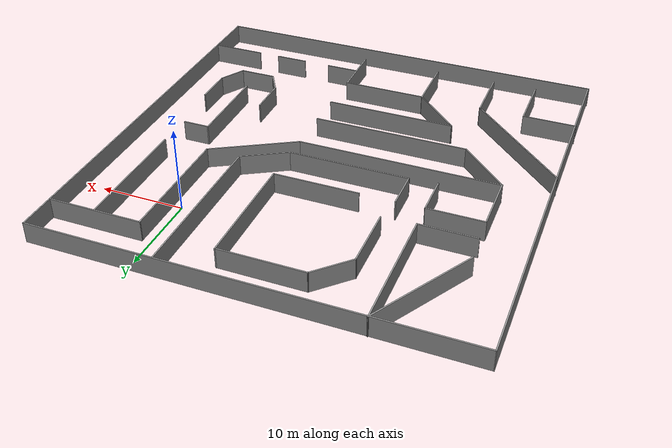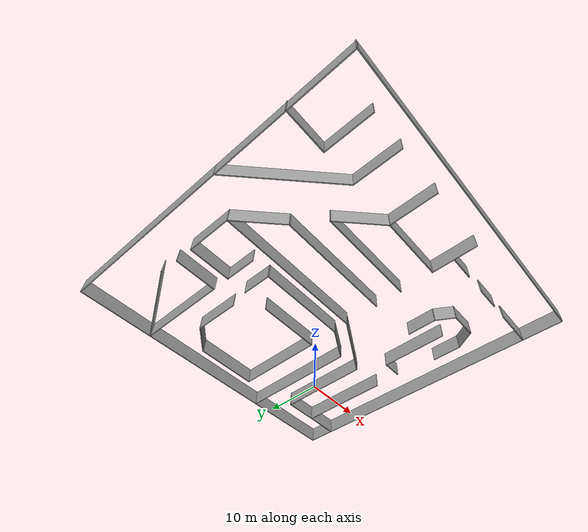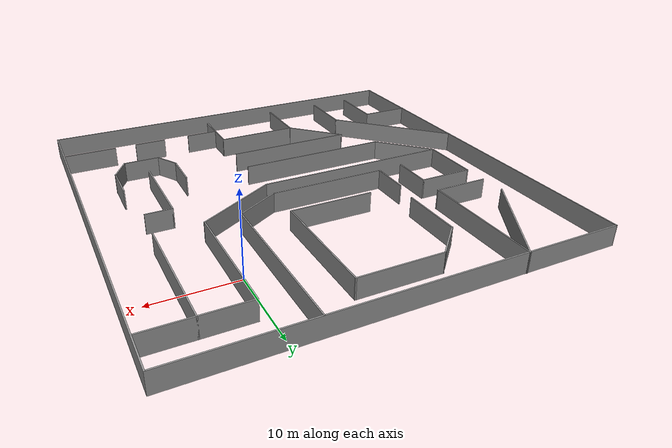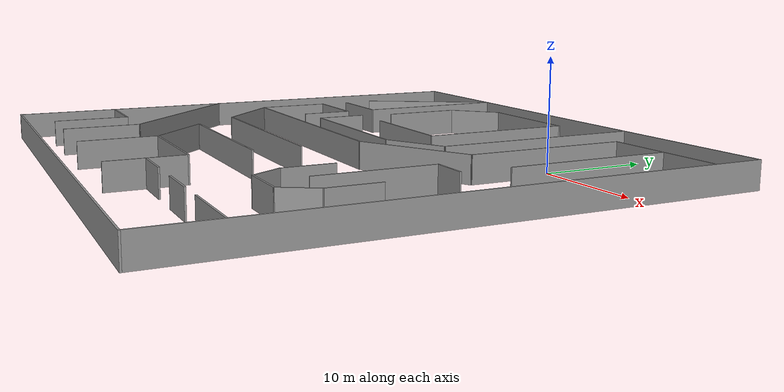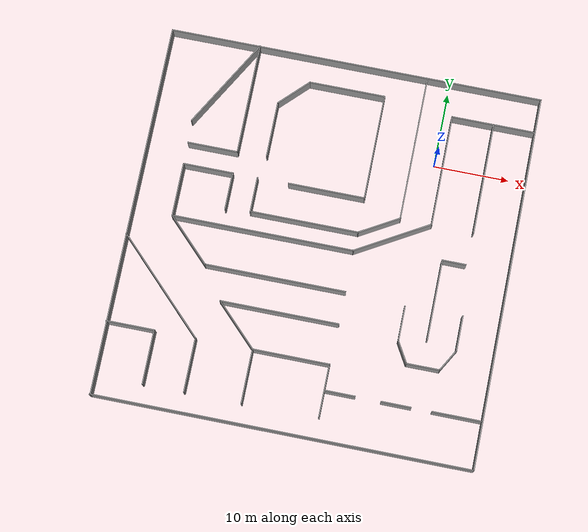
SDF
<?xml version='1.0'?>
<sdf version='1.6'>
  <model name='house_3'>
    <pose frame=''>-12.8065 -13.7879 0 0 -0 0</pose>
    <link name='Wall_0'>
      <collision name='Wall_0_Collision'>
        <geometry>
          <box>
            <size>50 0.15 2.5</size>
          </box>
        </geometry>
        <pose frame=''>0 0 1.25 0 -0 0</pose>
      </collision>
      <visual name='Wall_0_Visual'>
        <pose frame=''>0 0 1.25 0 -0 0</pose>
        <geometry>
          <box>
            <size>50 0.15 2.5</size>
          </box>
        </geometry>
        <material>
          <script>
            <uri>file://media/materials/scripts/gazebo.material</uri>
            <name>Gazebo/Grey</name>
          </script>
          <ambient>1 1 1 1</ambient>
        </material>
        <meta>
          <layer>0</layer>
        </meta>
      </visual>
      <pose frame=''>0.082539 24.8829 0 0 -0 0</pose>
    </link>
    <link name='Wall_10'>
      <collision name='Wall_10_Collision'>
        <geometry>
          <box>
            <size>15 0.15 2.5</size>
          </box>
        </geometry>
        <pose frame=''>0 0 1.25 0 -0 0</pose>
      </collision>
      <visual name='Wall_10_Visual'>
        <pose frame=''>0 0 1.25 0 -0 0</pose>
        <geometry>
          <box>
            <size>15 0.15 2.5</size>
          </box>
        </geometry>
        <material>
          <script>
            <uri>file://media/materials/scripts/gazebo.material</uri>
            <name>Gazebo/Grey</name>
          </script>
          <ambient>1 1 1 1</ambient>
        </material>
        <meta>
          <layer>0</layer>
        </meta>
      </visual>
      <pose frame=''>13.9015 12.9025 0 0 -0 -1.5708</pose>
    </link>
    <link name='Wall_12'>
      <collision name='Wall_12_Collision'>
        <geometry>
          <box>
            <size>15 0.15 2.5</size>
          </box>
        </geometry>
        <pose frame=''>0 0 1.25 0 -0 0</pose>
      </collision>
      <visual name='Wall_12_Visual'>
        <pose frame=''>0 0 1.25 0 -0 0</pose>
        <geometry>
          <box>
            <size>15 0.15 2.5</size>
          </box>
        </geometry>
        <material>
          <script>
            <uri>file://media/materials/scripts/gazebo.material</uri>
            <name>Gazebo/Grey</name>
          </script>
          <ambient>1 1 1 1</ambient>
        </material>
        <meta>
          <layer>0</layer>
        </meta>
      </visual>
      <pose frame=''>19.4669 12.9025 0 0 -0 -1.5708</pose>
    </link>
    <link name='Wall_14'>
      <collision name='Wall_14_Collision'>
        <geometry>
          <box>
            <size>11 0.15 2.5</size>
          </box>
        </geometry>
        <pose frame=''>0 0 1.25 0 -0 0</pose>
      </collision>
      <visual name='Wall_14_Visual'>
        <pose frame=''>0 0 1.25 0 -0 0</pose>
        <geometry>
          <box>
            <size>11 0.15 2.5</size>
          </box>
        </geometry>
        <material>
          <script>
            <uri>file://media/materials/scripts/gazebo.material</uri>
            <name>Gazebo/Grey</name>
          </script>
          <ambient>1 1 1 1</ambient>
        </material>
        <meta>
          <layer>0</layer>
        </meta>
      </visual>
      <pose frame=''>9.2033 2.76496 0 0 -0 -2.61799</pose>
    </link>
    <link name='Wall_15'>
      <collision name='Wall_15_Collision'>
        <geometry>
          <box>
            <size>24.25 0.15 2.5</size>
          </box>
        </geometry>
        <pose frame=''>0 0 1.25 0 -0 0</pose>
      </collision>
      <visual name='Wall_15_Visual'>
        <pose frame=''>0 0 1.25 0 -0 0</pose>
        <geometry>
          <box>
            <size>24.25 0.15 2.5</size>
          </box>
        </geometry>
        <material>
          <script>
            <uri>file://media/materials/scripts/gazebo.material</uri>
            <name>Gazebo/Grey</name>
          </script>
          <ambient>1 1 1 1</ambient>
        </material>
        <meta>
          <layer>0</layer>
        </meta>
      </visual>
      <pose frame=''>-7.54488 0.052464 0 0 -0 3.14159</pose>
    </link>
    <link name='Wall_16'>
      <collision name='Wall_16_Collision'>
        <geometry>
          <box>
            <size>7.25 0.15 2.5</size>
          </box>
        </geometry>
        <pose frame=''>0 0 1.25 0 -0 0</pose>
      </collision>
      <visual name='Wall_16_Visual'>
        <pose frame=''>0 0 1.25 0 -0 0</pose>
        <geometry>
          <box>
            <size>7.25 0.15 2.5</size>
          </box>
        </geometry>
        <material>
          <script>
            <uri>file://media/materials/scripts/gazebo.material</uri>
            <name>Gazebo/Grey</name>
          </script>
          <ambient>1 1 1 1</ambient>
        </material>
        <meta>
          <layer>0</layer>
        </meta>
      </visual>
      <pose frame=''>-19.5949 3.60246 0 0 -0 1.5708</pose>
    </link>
    <link name='Wall_17'>
      <collision name='Wall_17_Collision'>
        <geometry>
          <box>
            <size>6.75 0.15 2.5</size>
          </box>
        </geometry>
        <pose frame=''>0 0 1.25 0 -0 0</pose>
      </collision>
      <visual name='Wall_17_Visual'>
        <pose frame=''>0 0 1.25 0 -0 0</pose>
        <geometry>
          <box>
            <size>6.75 0.15 2.5</size>
          </box>
        </geometry>
        <material>
          <script>
            <uri>file://media/materials/scripts/gazebo.material</uri>
            <name>Gazebo/Grey</name>
          </script>
          <ambient>1 1 1 1</ambient>
        </material>
        <meta>
          <layer>0</layer>
        </meta>
      </visual>
      <pose frame=''>-16.2949 7.15246 0 0 -0 0</pose>
    </link>
    <link name='Wall_18'>
      <collision name='Wall_18_Collision'>
        <geometry>
          <box>
            <size>5 0.15 2.5</size>
          </box>
        </geometry>
        <pose frame=''>0 0 1.25 0 -0 0</pose>
      </collision>
      <visual name='Wall_18_Visual'>
        <pose frame=''>0 0 1.25 0 -0 0</pose>
        <geometry>
          <box>
            <size>5 0.15 2.5</size>
          </box>
        </geometry>
        <material>
          <script>
            <uri>file://media/materials/scripts/gazebo.material</uri>
            <name>Gazebo/Grey</name>
          </script>
          <ambient>1 1 1 1</ambient>
        </material>
        <meta>
          <layer>0</layer>
        </meta>
      </visual>
      <pose frame=''>-12.9949 4.72746 0 0 -0 -1.5708</pose>
    </link>
    <link name='Wall_20'>
      <collision name='Wall_20_Collision'>
        <geometry>
          <box>
            <size>15 0.15 2.5</size>
          </box>
        </geometry>
        <pose frame=''>0 0 1.25 0 -0 0</pose>
      </collision>
      <visual name='Wall_20_Visual'>
        <pose frame=''>0 0 1.25 0 -0 0</pose>
        <geometry>
          <box>
            <size>15 0.15 2.5</size>
          </box>
        </geometry>
        <material>
          <script>
            <uri>file://media/materials/scripts/gazebo.material</uri>
            <name>Gazebo/Grey</name>
          </script>
          <ambient>1 1 1 1</ambient>
        </material>
        <meta>
          <layer>0</layer>
        </meta>
      </visual>
      <pose frame=''>-12.9922 17.5147 0 0 -0 -1.5708</pose>
    </link>
    <link name='Wall_21'>
      <collision name='Wall_21_Collision'>
        <geometry>
          <box>
            <size>6.75 0.15 2.5</size>
          </box>
        </geometry>
        <pose frame=''>0 0 1.25 0 -0 0</pose>
      </collision>
      <visual name='Wall_21_Visual'>
        <pose frame=''>0 0 1.25 0 -0 0</pose>
        <geometry>
          <box>
            <size>6.75 0.15 2.5</size>
          </box>
        </geometry>
        <material>
          <script>
            <uri>file://media/materials/scripts/gazebo.material</uri>
            <name>Gazebo/Grey</name>
          </script>
          <ambient>1 1 1 1</ambient>
        </material>
        <meta>
          <layer>0</layer>
        </meta>
      </visual>
      <pose frame=''>-16.2922 10.0897 0 0 -0 3.14159</pose>
    </link>
    <link name='Wall_23'>
      <collision name='Wall_23_Collision'>
        <geometry>
          <box>
            <size>13.75 0.15 2.5</size>
          </box>
        </geometry>
        <pose frame=''>0 0 1.25 0 -0 0</pose>
      </collision>
      <visual name='Wall_23_Visual'>
        <pose frame=''>0 0 1.25 0 -0 0</pose>
        <geometry>
          <box>
            <size>13.75 0.15 2.5</size>
          </box>
        </geometry>
        <material>
          <script>
            <uri>file://media/materials/scripts/gazebo.material</uri>
            <name>Gazebo/Grey</name>
          </script>
          <ambient>1 1 1 1</ambient>
        </material>
        <meta>
          <layer>0</layer>
        </meta>
      </visual>
      <pose frame=''>-16.3922 19.0507 0 0 -0 -2.0944</pose>
    </link>
    <link name='Wall_26'>
      <collision name='Wall_26_Collision'>
        <geometry>
          <box>
            <size>19.5 0.15 2.5</size>
          </box>
        </geometry>
        <pose frame=''>0 0 1.25 0 -0 0</pose>
      </collision>
      <visual name='Wall_26_Visual'>
        <pose frame=''>0 0 1.25 0 -0 0</pose>
        <geometry>
          <box>
            <size>19.5 0.15 2.5</size>
          </box>
        </geometry>
        <material>
          <script>
            <uri>file://media/materials/scripts/gazebo.material</uri>
            <name>Gazebo/Grey</name>
          </script>
          <ambient>1 1 1 1</ambient>
        </material>
        <meta>
          <layer>0</layer>
        </meta>
      </visual>
      <pose frame=''>9.7287 15.1594 0 0 -0 -1.5708</pose>
    </link>
    <link name='Wall_27'>
      <collision name='Wall_27_Collision'>
        <geometry>
          <box>
            <size>6 0.15 2.5</size>
          </box>
        </geometry>
        <pose frame=''>0 0 1.25 0 -0 0</pose>
      </collision>
      <visual name='Wall_27_Visual'>
        <pose frame=''>0 0 1.25 0 -0 0</pose>
        <geometry>
          <box>
            <size>6 0.15 2.5</size>
          </box>
        </geometry>
        <material>
          <script>
            <uri>file://media/materials/scripts/gazebo.material</uri>
            <name>Gazebo/Grey</name>
          </script>
          <ambient>1 1 1 1</ambient>
        </material>
        <meta>
          <layer>0</layer>
        </meta>
      </visual>
      <pose frame=''>7.19558 4.02185 0 0 -0 -2.61799</pose>
    </link>
    <link name='Wall_28'>
      <collision name='Wall_28_Collision'>
        <geometry>
          <box>
            <size>14.5 0.15 2.5</size>
          </box>
        </geometry>
        <pose frame=''>0 0 1.25 0 -0 0</pose>
      </collision>
      <visual name='Wall_28_Visual'>
        <pose frame=''>0 0 1.25 0 -0 0</pose>
        <geometry>
          <box>
            <size>14.5 0.15 2.5</size>
          </box>
        </geometry>
        <material>
          <script>
            <uri>file://media/materials/scripts/gazebo.material</uri>
            <name>Gazebo/Grey</name>
          </script>
          <ambient>1 1 1 1</ambient>
        </material>
        <meta>
          <layer>0</layer>
        </meta>
      </visual>
      <pose frame=''>-2.51255 2.55935 0 0 -0 3.14159</pose>
    </link>
    <link name='Wall_29'>
      <collision name='Wall_29_Collision'>
        <geometry>
          <box>
            <size>4.75 0.15 2.5</size>
          </box>
        </geometry>
        <pose frame=''>0 0 1.25 0 -0 0</pose>
      </collision>
      <visual name='Wall_29_Visual'>
        <pose frame=''>0 0 1.25 0 -0 0</pose>
        <geometry>
          <box>
            <size>4.75 0.15 2.5</size>
          </box>
        </geometry>
        <material>
          <script>
            <uri>file://media/materials/scripts/gazebo.material</uri>
            <name>Gazebo/Grey</name>
          </script>
          <ambient>1 1 1 1</ambient>
        </material>
        <meta>
          <layer>0</layer>
        </meta>
      </visual>
      <pose frame=''>-9.68755 4.85935 0 0 -0 1.5708</pose>
    </link>
    <link name='Wall_3'>
      <collision name='Wall_3_Collision'>
        <geometry>
          <box>
            <size>50 0.15 2.5</size>
          </box>
        </geometry>
        <pose frame=''>0 0 1.25 0 -0 0</pose>
      </collision>
      <visual name='Wall_3_Visual'>
        <pose frame=''>0 0 1.25 0 -0 0</pose>
        <geometry>
          <box>
            <size>50 0.15 2.5</size>
          </box>
        </geometry>
        <material>
          <script>
            <uri>file://media/materials/scripts/gazebo.material</uri>
            <name>Gazebo/Grey</name>
          </script>
          <ambient>1 1 1 1</ambient>
        </material>
        <meta>
          <layer>0</layer>
        </meta>
      </visual>
      <pose frame=''>25.0075 -0.042105 0 0 -0 -1.5708</pose>
    </link>
    <link name='Wall_32'>
      <collision name='Wall_32_Collision'>
        <geometry>
          <box>
            <size>16.75 0.15 2.5</size>
          </box>
        </geometry>
        <pose frame=''>0 0 1.25 0 -0 0</pose>
      </collision>
      <visual name='Wall_32_Visual'>
        <pose frame=''>0 0 1.25 0 -0 0</pose>
        <geometry>
          <box>
            <size>16.75 0.15 2.5</size>
          </box>
        </geometry>
        <material>
          <script>
            <uri>file://media/materials/scripts/gazebo.material</uri>
            <name>Gazebo/Grey</name>
          </script>
          <ambient>1 1 1 1</ambient>
        </material>
        <meta>
          <layer>0</layer>
        </meta>
      </visual>
      <pose frame=''>-19.0933 -9.36439 0 0 -0 -0.785398</pose>
    </link>
    <link name='Wall_33'>
      <collision name='Wall_33_Collision'>
        <geometry>
          <box>
            <size>7.25 0.15 2.5</size>
          </box>
        </geometry>
        <pose frame=''>0 0 1.25 0 -0 0</pose>
      </collision>
      <visual name='Wall_33_Visual'>
        <pose frame=''>0 0 1.25 0 -0 0</pose>
        <geometry>
          <box>
            <size>7.25 0.15 2.5</size>
          </box>
        </geometry>
        <material>
          <script>
            <uri>file://media/materials/scripts/gazebo.material</uri>
            <name>Gazebo/Grey</name>
          </script>
          <ambient>1 1 1 1</ambient>
        </material>
        <meta>
          <layer>0</layer>
        </meta>
      </visual>
      <pose frame=''>-13.2244 -18.7834 0 0 -0 -1.5708</pose>
    </link>
    <link name='Wall_35'>
      <collision name='Wall_35_Collision'>
        <geometry>
          <box>
            <size>8 0.15 2.5</size>
          </box>
        </geometry>
        <pose frame=''>0 0 1.25 0 -0 0</pose>
      </collision>
      <visual name='Wall_35_Visual'>
        <pose frame=''>0 0 1.25 0 -0 0</pose>
        <geometry>
          <box>
            <size>8 0.15 2.5</size>
          </box>
        </geometry>
        <material>
          <script>
            <uri>file://media/materials/scripts/gazebo.material</uri>
            <name>Gazebo/Grey</name>
          </script>
          <ambient>1 1 1 1</ambient>
        </material>
        <meta>
          <layer>0</layer>
        </meta>
      </visual>
      <pose frame=''>-16.8195 -2.72293 0 0 -0 -0.785398</pose>
    </link>
    <link name='Wall_36'>
      <collision name='Wall_36_Collision'>
        <geometry>
          <box>
            <size>18.75 0.15 2.5</size>
          </box>
        </geometry>
        <pose frame=''>0 0 1.25 0 -0 0</pose>
      </collision>
      <visual name='Wall_36_Visual'>
        <pose frame=''>0 0 1.25 0 -0 0</pose>
        <geometry>
          <box>
            <size>18.75 0.15 2.5</size>
          </box>
        </geometry>
        <material>
          <script>
            <uri>file://media/materials/scripts/gazebo.material</uri>
            <name>Gazebo/Grey</name>
          </script>
          <ambient>1 1 1 1</ambient>
        </material>
        <meta>
          <layer>0</layer>
        </meta>
      </visual>
      <pose frame=''>-4.7441 -5.49833 0 0 -0 0</pose>
    </link>
    <link name='Wall_38'>
      <collision name='Wall_38_Collision'>
        <geometry>
          <box>
            <size>15.75 0.15 2.5</size>
          </box>
        </geometry>
        <pose frame=''>0 0 1.25 0 -0 0</pose>
      </collision>
      <visual name='Wall_38_Visual'>
        <pose frame=''>0 0 1.25 0 -0 0</pose>
        <geometry>
          <box>
            <size>15.75 0.15 2.5</size>
          </box>
        </geometry>
        <material>
          <script>
            <uri>file://media/materials/scripts/gazebo.material</uri>
            <name>Gazebo/Grey</name>
          </script>
          <ambient>1 1 1 1</ambient>
        </material>
        <meta>
          <layer>0</layer>
        </meta>
      </visual>
      <pose frame=''>-3.28574 -9.83847 0 0 -0 3.14159</pose>
    </link>
    <link name='Wall_39'>
      <collision name='Wall_39_Collision'>
        <geometry>
          <box>
            <size>7.75 0.15 2.5</size>
          </box>
        </geometry>
        <pose frame=''>0 0 1.25 0 -0 0</pose>
      </collision>
      <visual name='Wall_39_Visual'>
        <pose frame=''>0 0 1.25 0 -0 0</pose>
        <geometry>
          <box>
            <size>7.75 0.15 2.5</size>
          </box>
        </geometry>
        <material>
          <script>
            <uri>file://media/materials/scripts/gazebo.material</uri>
            <name>Gazebo/Grey</name>
          </script>
          <ambient>1 1 1 1</ambient>
        </material>
        <meta>
          <layer>0</layer>
        </meta>
      </visual>
      <pose frame=''>-8.3986 -12.5253 0 0 -0 -0.785339</pose>
    </link>
    <link name='Wall_4'>
      <collision name='Wall_4_Collision'>
        <geometry>
          <box>
            <size>50.16 0.15 2.5</size>
          </box>
        </geometry>
        <pose frame=''>0 0 1.25 0 -0 0</pose>
      </collision>
      <visual name='Wall_4_Visual'>
        <pose frame=''>0 0 1.25 0 -0 0</pose>
        <geometry>
          <box>
            <size>50.16 0.15 2.5</size>
          </box>
        </geometry>
        <material>
          <script>
            <uri>file://media/materials/scripts/gazebo.material</uri>
            <name>Gazebo/Grey</name>
          </script>
          <ambient>1 1 1 1</ambient>
        </material>
        <meta>
          <layer>0</layer>
        </meta>
      </visual>
      <pose frame=''>0.002539 -24.9671 0 0 -0 3.14159</pose>
    </link>
    <link name='Wall_40'>
      <collision name='Wall_40_Collision'>
        <geometry>
          <box>
            <size>10.25 0.15 2.5</size>
          </box>
        </geometry>
        <pose frame=''>0 0 1.25 0 -0 0</pose>
      </collision>
      <visual name='Wall_40_Visual'>
        <pose frame=''>0 0 1.25 0 -0 0</pose>
        <geometry>
          <box>
            <size>10.25 0.15 2.5</size>
          </box>
        </geometry>
        <material>
          <script>
            <uri>file://media/materials/scripts/gazebo.material</uri>
            <name>Gazebo/Grey</name>
          </script>
          <ambient>1 1 1 1</ambient>
        </material>
        <meta>
          <layer>0</layer>
        </meta>
      </visual>
      <pose frame=''>-0.661594 -15.2123 0 0 -0 -3.7e-05</pose>
    </link>
    <link name='Wall_41'>
      <collision name='Wall_41_Collision'>
        <geometry>
          <box>
            <size>7 0.15 2.5</size>
          </box>
        </geometry>
        <pose frame=''>0 0 1.25 0 -0 0</pose>
      </collision>
      <visual name='Wall_41_Visual'>
        <pose frame=''>0 0 1.25 0 -0 0</pose>
        <geometry>
          <box>
            <size>7 0.15 2.5</size>
          </box>
        </geometry>
        <material>
          <script>
            <uri>file://media/materials/scripts/gazebo.material</uri>
            <name>Gazebo/Grey</name>
          </script>
          <ambient>1 1 1 1</ambient>
        </material>
        <meta>
          <layer>0</layer>
        </meta>
      </visual>
      <pose frame=''>4.38827 -18.6375 0 0 -0 -1.5708</pose>
    </link>
    <link name='Wall_45'>
      <collision name='Wall_45_Collision'>
        <geometry>
          <box>
            <size>4.75 0.15 2.5</size>
          </box>
        </geometry>
        <pose frame=''>0 0 1.25 0 -0 0</pose>
      </collision>
      <visual name='Wall_45_Visual'>
        <pose frame=''>0 0 1.25 0 -0 0</pose>
        <geometry>
          <box>
            <size>4.75 0.15 2.5</size>
          </box>
        </geometry>
        <material>
          <script>
            <uri>file://media/materials/scripts/gazebo.material</uri>
            <name>Gazebo/Grey</name>
          </script>
          <ambient>1 1 1 1</ambient>
        </material>
        <meta>
          <layer>0</layer>
        </meta>
      </visual>
      <pose frame=''>20.0784 -7.97043 0 0 -0 -1.5708</pose>
    </link>
    <link name='Wall_46'>
      <collision name='Wall_46_Collision'>
        <geometry>
          <box>
            <size>3.5 0.15 2.5</size>
          </box>
        </geometry>
        <pose frame=''>0 0 1.25 0 -0 0</pose>
      </collision>
      <visual name='Wall_46_Visual'>
        <pose frame=''>0 0 1.25 0 -0 0</pose>
        <geometry>
          <box>
            <size>3.5 0.15 2.5</size>
          </box>
        </geometry>
        <material>
          <script>
            <uri>file://media/materials/scripts/gazebo.material</uri>
            <name>Gazebo/Grey</name>
          </script>
          <ambient>1 1 1 1</ambient>
        </material>
        <meta>
          <layer>0</layer>
        </meta>
      </visual>
      <pose frame=''>19.2409 -11.721 0 0 -0 -2.0944</pose>
    </link>
    <link name='Wall_47'>
      <collision name='Wall_47_Collision'>
        <geometry>
          <box>
            <size>4.5 0.15 2.5</size>
          </box>
        </geometry>
        <pose frame=''>0 0 1.25 0 -0 0</pose>
      </collision>
      <visual name='Wall_47_Visual'>
        <pose frame=''>0 0 1.25 0 -0 0</pose>
        <geometry>
          <box>
            <size>4.5 0.15 2.5</size>
          </box>
        </geometry>
        <material>
          <script>
            <uri>file://media/materials/scripts/gazebo.material</uri>
            <name>Gazebo/Grey</name>
          </script>
          <ambient>1 1 1 1</ambient>
        </material>
        <meta>
          <layer>0</layer>
        </meta>
      </visual>
      <pose frame=''>16.2284 -13.1716 0 0 -0 3.14159</pose>
    </link>
    <link name='Wall_48'>
      <collision name='Wall_48_Collision'>
        <geometry>
          <box>
            <size>3.25 0.15 2.5</size>
          </box>
        </geometry>
        <pose frame=''>0 0 1.25 0 -0 0</pose>
      </collision>
      <visual name='Wall_48_Visual'>
        <pose frame=''>0 0 1.25 0 -0 0</pose>
        <geometry>
          <box>
            <size>3.25 0.15 2.5</size>
          </box>
        </geometry>
        <material>
          <script>
            <uri>file://media/materials/scripts/gazebo.material</uri>
            <name>Gazebo/Grey</name>
          </script>
          <ambient>1 1 1 1</ambient>
        </material>
        <meta>
          <layer>0</layer>
        </meta>
      </visual>
      <pose frame=''>13.2784 -11.8293 0 0 -0 2.0944</pose>
    </link>
    <link name='Wall_49'>
      <collision name='Wall_49_Collision'>
        <geometry>
          <box>
            <size>4.75 0.15 2.5</size>
          </box>
        </geometry>
        <pose frame=''>0 0 1.25 0 -0 0</pose>
      </collision>
      <visual name='Wall_49_Visual'>
        <pose frame=''>0 0 1.25 0 -0 0</pose>
        <geometry>
          <box>
            <size>4.75 0.15 2.5</size>
          </box>
        </geometry>
        <material>
          <script>
            <uri>file://media/materials/scripts/gazebo.material</uri>
            <name>Gazebo/Grey</name>
          </script>
          <ambient>1 1 1 1</ambient>
        </material>
        <meta>
          <layer>0</layer>
        </meta>
      </visual>
      <pose frame=''>12.5034 -8.18694 0 0 -0 1.5708</pose>
    </link>
    <link name='Wall_52'>
      <collision name='Wall_52_Collision'>
        <geometry>
          <box>
            <size>10.25 0.15 2.5</size>
          </box>
        </geometry>
        <pose frame=''>0 0 1.25 0 -0 0</pose>
      </collision>
      <visual name='Wall_52_Visual'>
        <pose frame=''>0 0 1.25 0 -0 0</pose>
        <geometry>
          <box>
            <size>10.25 0.15 2.5</size>
          </box>
        </geometry>
        <material>
          <script>
            <uri>file://media/materials/scripts/gazebo.material</uri>
            <name>Gazebo/Grey</name>
          </script>
          <ambient>1 1 1 1</ambient>
        </material>
        <meta>
          <layer>0</layer>
        </meta>
      </visual>
      <pose frame=''>-0.439669 7.22302 0 0 -0 0</pose>
    </link>
    <link name='Wall_53'>
      <collision name='Wall_53_Collision'>
        <geometry>
          <box>
            <size>14.25 0.15 2.5</size>
          </box>
        </geometry>
        <pose frame=''>0 0 1.25 0 -0 0</pose>
      </collision>
      <visual name='Wall_53_Visual'>
        <pose frame=''>0 0 1.25 0 -0 0</pose>
        <geometry>
          <box>
            <size>14.25 0.15 2.5</size>
          </box>
        </geometry>
        <material>
          <script>
            <uri>file://media/materials/scripts/gazebo.material</uri>
            <name>Gazebo/Grey</name>
          </script>
          <ambient>1 1 1 1</ambient>
        </material>
        <meta>
          <layer>0</layer>
        </meta>
      </visual>
      <pose frame=''>4.61033 14.273 0 0 -0 1.5708</pose>
    </link>
    <link name='Wall_54'>
      <collision name='Wall_54_Collision'>
        <geometry>
          <box>
            <size>10.25 0.15 2.5</size>
          </box>
        </geometry>
        <pose frame=''>0 0 1.25 0 -0 0</pose>
      </collision>
      <visual name='Wall_54_Visual'>
        <pose frame=''>0 0 1.25 0 -0 0</pose>
        <geometry>
          <box>
            <size>10.25 0.15 2.5</size>
          </box>
        </geometry>
        <material>
          <script>
            <uri>file://media/materials/scripts/gazebo.material</uri>
            <name>Gazebo/Grey</name>
          </script>
          <ambient>1 1 1 1</ambient>
        </material>
        <meta>
          <layer>0</layer>
        </meta>
      </visual>
      <pose frame=''>-0.439669 21.323 0 0 -0 3.14159</pose>
    </link>
    <link name='Wall_55'>
      <collision name='Wall_55_Collision'>
        <geometry>
          <box>
            <size>5.25 0.15 2.5</size>
          </box>
        </geometry>
        <pose frame=''>0 0 1.25 0 -0 0</pose>
      </collision>
      <visual name='Wall_55_Visual'>
        <pose frame=''>0 0 1.25 0 -0 0</pose>
        <geometry>
          <box>
            <size>5.25 0.15 2.5</size>
          </box>
        </geometry>
        <material>
          <script>
            <uri>file://media/materials/scripts/gazebo.material</uri>
            <name>Gazebo/Grey</name>
          </script>
          <ambient>1 1 1 1</ambient>
        </material>
        <meta>
          <layer>0</layer>
        </meta>
      </visual>
      <pose frame=''>-7.29279 19.5199 0 0 -0 -2.35619</pose>
    </link>
    <link name='Wall_56'>
      <collision name='Wall_56_Collision'>
        <geometry>
          <box>
            <size>7.5 0.15 2.5</size>
          </box>
        </geometry>
        <pose frame=''>0 0 1.25 0 -0 0</pose>
      </collision>
      <visual name='Wall_56_Visual'>
        <pose frame=''>0 0 1.25 0 -0 0</pose>
        <geometry>
          <box>
            <size>7.5 0.15 2.5</size>
          </box>
        </geometry>
        <material>
          <script>
            <uri>file://media/materials/scripts/gazebo.material</uri>
            <name>Gazebo/Grey</name>
          </script>
          <ambient>1 1 1 1</ambient>
        </material>
        <meta>
          <layer>0</layer>
        </meta>
      </visual>
      <pose frame=''>-9.09591 14.0418 0 0 -0 -1.5708</pose>
    </link>
    <link name='Wall_58'>
      <collision name='Wall_58_Collision'>
        <geometry>
          <box>
            <size>10.75 0.15 2.5</size>
          </box>
        </geometry>
        <pose frame=''>0 0 1.25 0 -0 0</pose>
      </collision>
      <visual name='Wall_58_Visual'>
        <pose frame=''>0 0 1.25 0 -0 0</pose>
        <geometry>
          <box>
            <size>10.75 0.15 2.5</size>
          </box>
        </geometry>
        <material>
          <script>
            <uri>file://media/materials/scripts/gazebo.material</uri>
            <name>Gazebo/Grey</name>
          </script>
          <ambient>1 1 1 1</ambient>
        </material>
        <meta>
          <layer>0</layer>
        </meta>
      </visual>
      <pose frame=''>16.1325 -4.24559 0 0 -0 1.5708</pose>
    </link>
    <link name='Wall_59'>
      <collision name='Wall_59_Collision'>
        <geometry>
          <box>
            <size>3.25 0.15 2.5</size>
          </box>
        </geometry>
        <pose frame=''>0 0 1.25 0 -0 0</pose>
      </collision>
      <visual name='Wall_59_Visual'>
        <pose frame=''>0 0 1.25 0 -0 0</pose>
        <geometry>
          <box>
            <size>3.25 0.15 2.5</size>
          </box>
        </geometry>
        <material>
          <script>
            <uri>file://media/materials/scripts/gazebo.material</uri>
            <name>Gazebo/Grey</name>
          </script>
          <ambient>1 1 1 1</ambient>
        </material>
        <meta>
          <layer>0</layer>
        </meta>
      </visual>
      <pose frame=''>17.6825 1.05441 0 0 -0 0</pose>
    </link>
    <link name='Wall_61'>
      <collision name='Wall_61_Collision'>
        <geometry>
          <box>
            <size>4 0.15 2.5</size>
          </box>
        </geometry>
        <pose frame=''>0 0 1.25 0 -0 0</pose>
      </collision>
      <visual name='Wall_61_Visual'>
        <pose frame=''>0 0 1.25 0 -0 0</pose>
        <geometry>
          <box>
            <size>4 0.15 2.5</size>
          </box>
        </geometry>
        <material>
          <script>
            <uri>file://media/materials/scripts/gazebo.material</uri>
            <name>Gazebo/Grey</name>
          </script>
          <ambient>1 1 1 1</ambient>
        </material>
        <meta>
          <layer>0</layer>
        </meta>
      </visual>
      <pose frame=''>6.44831 -18.6339 0 0 -0 0</pose>
    </link>
    <link name='Wall_63'>
      <collision name='Wall_63_Collision'>
        <geometry>
          <box>
            <size>4 0.15 2.5</size>
          </box>
        </geometry>
        <pose frame=''>0 0 1.25 0 -0 0</pose>
      </collision>
      <visual name='Wall_63_Visual'>
        <pose frame=''>0 0 1.25 0 -0 0</pose>
        <geometry>
          <box>
            <size>4 0.15 2.5</size>
          </box>
        </geometry>
        <material>
          <script>
            <uri>file://media/materials/scripts/gazebo.material</uri>
            <name>Gazebo/Grey</name>
          </script>
          <ambient>1 1 1 1</ambient>
        </material>
        <meta>
          <layer>0</layer>
        </meta>
      </visual>
      <pose frame=''>13.754 -18.6339 0 0 -0 0</pose>
    </link>
    <link name='Wall_68'>
      <collision name='Wall_68_Collision'>
        <geometry>
          <box>
            <size>6.5 0.15 2.5</size>
          </box>
        </geometry>
        <pose frame=''>0 0 1.25 0 -0 0</pose>
      </collision>
      <visual name='Wall_68_Visual'>
        <pose frame=''>0 0 1.25 0 -0 0</pose>
        <geometry>
          <box>
            <size>6.5 0.15 2.5</size>
          </box>
        </geometry>
        <material>
          <script>
            <uri>file://media/materials/scripts/gazebo.material</uri>
            <name>Gazebo/Grey</name>
          </script>
          <ambient>1 1 1 1</ambient>
        </material>
        <meta>
          <layer>0</layer>
        </meta>
      </visual>
      <pose frame=''>-21.8325 -15.2562 0 0 -0 4.3e-05</pose>
    </link>
    <link name='Wall_69'>
      <collision name='Wall_69_Collision'>
        <geometry>
          <box>
            <size>7.25 0.15 2.5</size>
          </box>
        </geometry>
        <pose frame=''>0 0 1.25 0 -0 0</pose>
      </collision>
      <visual name='Wall_69_Visual'>
        <pose frame=''>0 0 1.25 0 -0 0</pose>
        <geometry>
          <box>
            <size>7.25 0.15 2.5</size>
          </box>
        </geometry>
        <material>
          <script>
            <uri>file://media/materials/scripts/gazebo.material</uri>
            <name>Gazebo/Grey</name>
          </script>
          <ambient>1 1 1 1</ambient>
        </material>
        <meta>
          <layer>0</layer>
        </meta>
      </visual>
      <pose frame=''>-18.6575 -18.8061 0 0 -0 -1.5708</pose>
    </link>
    <link name='Wall_7'>
      <collision name='Wall_7_Collision'>
        <geometry>
          <box>
            <size>50 0.15 2.5</size>
          </box>
        </geometry>
        <pose frame=''>0 0 1.25 0 -0 0</pose>
      </collision>
      <visual name='Wall_7_Visual'>
        <pose frame=''>0 0 1.25 0 -0 0</pose>
        <geometry>
          <box>
            <size>50 0.15 2.5</size>
          </box>
        </geometry>
        <material>
          <script>
            <uri>file://media/materials/scripts/gazebo.material</uri>
            <name>Gazebo/Grey</name>
          </script>
          <ambient>1 1 1 1</ambient>
        </material>
        <meta>
          <layer>0</layer>
        </meta>
      </visual>
      <pose frame=''>-24.9225 -0.042105 0 0 -0 1.5708</pose>
    </link>
    <link name='Wall_72'>
      <collision name='Wall_72_Collision'>
        <geometry>
          <box>
            <size>6.5 0.15 2.5</size>
          </box>
        </geometry>
        <pose frame=''>0 0 1.25 0 -0 0</pose>
      </collision>
      <visual name='Wall_72_Visual'>
        <pose frame=''>0 0 1.25 0 -0 0</pose>
        <geometry>
          <box>
            <size>6.5 0.15 2.5</size>
          </box>
        </geometry>
        <material>
          <script>
            <uri>file://media/materials/scripts/gazebo.material</uri>
            <name>Gazebo/Grey</name>
          </script>
          <ambient>1 1 1 1</ambient>
        </material>
        <meta>
          <layer>0</layer>
        </meta>
      </visual>
      <pose frame=''>21.6582 -18.6237 0 0 -0 0</pose>
    </link>
    <link name='Wall_74'>
      <collision name='Wall_74_Collision'>
        <geometry>
          <box>
            <size>7.25 0.15 2.5</size>
          </box>
        </geometry>
        <pose frame=''>0 0 1.25 0 -0 0</pose>
      </collision>
      <visual name='Wall_74_Visual'>
        <pose frame=''>0 0 1.25 0 -0 0</pose>
        <geometry>
          <box>
            <size>7.25 0.15 2.5</size>
          </box>
        </geometry>
        <material>
          <script>
            <uri>file://media/materials/scripts/gazebo.material</uri>
            <name>Gazebo/Grey</name>
          </script>
          <ambient>1 1 1 1</ambient>
        </material>
        <meta>
          <layer>0</layer>
        </meta>
      </visual>
      <pose frame=''>-5.71146 -18.7621 0 0 -0 -1.5708</pose>
    </link>
    <link name='Wall_9'>
      <collision name='Wall_9_Collision'>
        <geometry>
          <box>
            <size>11.25 0.15 2.5</size>
          </box>
        </geometry>
        <pose frame=''>0 0 1.25 0 -0 0</pose>
      </collision>
      <visual name='Wall_9_Visual'>
        <pose frame=''>0 0 1.25 0 -0 0</pose>
        <geometry>
          <box>
            <size>11.25 0.15 2.5</size>
          </box>
        </geometry>
        <material>
          <script>
            <uri>file://media/materials/scripts/gazebo.material</uri>
            <name>Gazebo/Grey</name>
          </script>
          <ambient>1 1 1 1</ambient>
        </material>
        <meta>
          <layer>0</layer>
        </meta>
      </visual>
      <pose frame=''>19.4515 20.3275 0 0 -0 3.14159</pose>
    </link>
    <static>1</static>
  </model>
</sdf>
